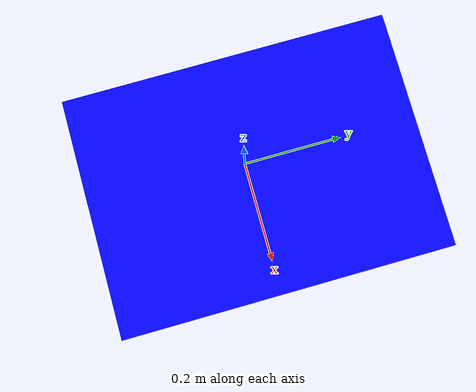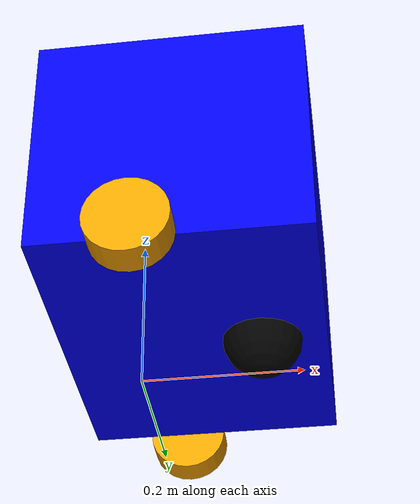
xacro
<?xml version ="1.0"?>
<robot xmlns:xacro="http://ros.org/wiki/xacro">

    <xacro:include filename="inertial_macros.xacro"/>

    <material name="white">
        <color rgba="1 1 1 1"/>
    </material>

    <material name="orange">
        <color rgba="1 0.647 0 1"/>
    </material>

    <material name="blue">
        <color rgba="0 0 1 1"/>
    </material>

    <material name="black">
        <color rgba="0 0 0 1"/>
    </material>
    <!--  Base LINk  -->
    <link name="base_link">

    </link>

    <joint name="chassis_joint" type="fixed">
        <parent link="base_link"/>
        <child link="chassis"/>
        <origin xyz="-0.1 0 0"/>
    </joint>
<!--   Chassis    -->
    <link name="chassis">
        <visual>
            <origin xyz="0.165 0 0.2"/>
            <geometry>
                <box size="0.3302 0.4572 0.3048"/>
            </geometry>
            <material name="blue"/>
        </visual>
         <collision>
           <origin xyz="0.165 0 0.1524"/>
            <geometry>
                <box size="0.3302 0.4572 0.3048"/>
            </geometry>
        </collision>
        <xacro:inertial_box mass="4.5" x="0.3302" y="0.4572" z="0.3048">
            <origin xyz="0.165 0 0.1524" rpy="0 0 0"/>
        </xacro:inertial_box>
    </link>
    <!-- Left tread -->

<!-- Left invisble wheel to  actually drive do not add collision-->
<joint name="left_wheel_rear_joint" type="continuous">
  <parent link="base_link"/>
  <child link="left_rear_wheel"/>
  <origin xyz="0.025 0.25 0.05" rpy="-${pi/2} 0 0"/>
  <axis xyz="0 0 1"/>
</joint>

<link name="left_rear_wheel">
  <visual>
    <geometry>
      <cylinder radius="0.05" length="0.04"/>
    </geometry>
    <material name="orange"/>
  </visual>
  <collision>
    <geometry>
      <cylinder radius="0.05" length="0.04"/>
    </geometry>
  </collision>
  <xacro:inertial_cylinder mass="0.2" length="0.04" radius="0.05">
    <origin xyz="0 0 0" rpy="0 0 0"/>
  </xacro:inertial_cylinder>
</link>

<!-- Right tread -->

<!-- Right invisble wheel to  actually drive do not add collision-->

<joint name="right_wheel_rear_joint" type="continuous">
  <parent link="base_link"/>
  <child link="right_rear_wheel"/>
  <origin xyz="0.025 -0.25 0.05" rpy="${pi/2} 0 0"/>
  <axis xyz="0 0 -1"/>
</joint>

<link name="right_rear_wheel">
  <visual>
    <geometry>
      <cylinder radius="0.05" length="0.04"/>
    </geometry>
    <material name="orange"/>
  </visual>
    <collision>
    <geometry>
      <cylinder radius="0.05" length="0.04"/>
    </geometry>
  </collision>
  <xacro:inertial_cylinder mass="0.2" length="0.04" radius="0.05">
    <origin xyz="0 0 0" rpy=" 0 0 0"/>
  </xacro:inertial_cylinder>
</link>
<!-- Right invisble wheel to  actually drive do not add collision-->

<!-- caster wheel-->
<joint name="caster_wheel_joint" type="continuous">
  <parent link="chassis"/>
  <child link="caster_wheel"/>
  <origin xyz="0.25 0 0.05" />
</joint>S

<link name="caster_wheel">
  <visual>
    <geometry>
      <sphere radius="0.05"/>
    </geometry>
    <material name="black"/>
  </visual>
  <collision>
    <geometry>
      <sphere radius="0.05"/>
    </geometry>
  </collision>
  <xacro:inertial_sphere mass="0.2" radius="0.05">
    <origin xyz="0 0 0" rpy="0 0 0"/>
  </xacro:inertial_sphere>
</link>
</robot>
